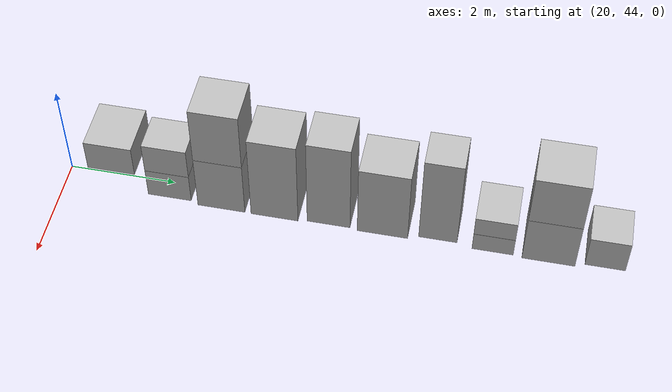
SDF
<sdf version="1.5">
 <world name="default">
  <model name="ground_plane">
   <static>true</static>
   <link name="link">
    <collision name="collision">
     <geometry><plane><normal>0 0 1</normal><size>250 250</size></plane></geometry>
     <surface><friction><ode><mu>1</mu><mu2>1</mu2></ode></friction></surface>
    </collision>
    <visual name="grass">
     <cast_shadows>false</cast_shadows>
     <geometry><mesh><uri>file://grass_plane/meshes/grass_plane.dae</uri></mesh></geometry>
    </visual>
   </link>
  </model>
  <model name="Cardboard_box_top_595">
   <link name="link_0">
    <pose>20 45 0.676208638989 0 0 0</pose>
    <inertial>
     <mass>1</mass>
     <inertia>
      <ixx>0.166667</ixx>
      <ixy>0</ixy>
      <ixz>0</ixz>
      <iyy>0.166667</iyy>
      <iyz>0</iyz>
      <izz>0.166667</izz>
     </inertia>
    </inertial>
    <collision name="collision">
     <geometry>
      <mesh>
       <uri>model://Cardboard_box/meshes/cardboard_box.dae</uri>
       <scale>2.4670551635 2.21532120458 1.69052159747</scale>
      </mesh>
     </geometry>
    </collision>
    <visual name="visual">
     <geometry>
      <mesh>
       <uri>model://Cardboard_box/meshes/cardboard_box.dae</uri>
       <scale>2.4670551635 2.21532120458 1.69052159747</scale>
      </mesh>
     </geometry>
    </visual>
   </link>
   <static>1</static>
  </model>
  <model name="Cardboard_box_596">
   <link name="link_0">
    <pose>20 46 0 0 0 0</pose>
    <inertial>
     <mass>1</mass>
     <inertia>
      <ixx>0.166667</ixx>
      <ixy>0</ixy>
      <ixz>0</ixz>
      <iyy>0.166667</iyy>
      <iyz>0</iyz>
      <izz>0.166667</izz>
     </inertia>
    </inertial>
    <collision name="collision">
     <geometry>
      <mesh>
       <uri>model://Cardboard_box/meshes/cardboard_box.dae</uri>
       <scale>1.80768820556 2.0607236674 1.68844038289</scale>
      </mesh>
     </geometry>
    </collision>
    <visual name="visual">
     <geometry>
      <mesh>
       <uri>model://Cardboard_box/meshes/cardboard_box.dae</uri>
       <scale>1.80768820556 2.0607236674 1.68844038289</scale>
      </mesh>
     </geometry>
    </visual>
   </link>
   <static>1</static>
  </model>
  <model name="Cardboard_box_top_596">
   <link name="link_0">
    <pose>20 46 0.675376153158 0 0 0</pose>
    <inertial>
     <mass>1</mass>
     <inertia>
      <ixx>0.166667</ixx>
      <ixy>0</ixy>
      <ixz>0</ixz>
      <iyy>0.166667</iyy>
      <iyz>0</iyz>
      <izz>0.166667</izz>
     </inertia>
    </inertial>
    <collision name="collision">
     <geometry>
      <mesh>
       <uri>model://Cardboard_box/meshes/cardboard_box.dae</uri>
       <scale>1.80768820556 2.0607236674 1.68844038289</scale>
      </mesh>
     </geometry>
    </collision>
    <visual name="visual">
     <geometry>
      <mesh>
       <uri>model://Cardboard_box/meshes/cardboard_box.dae</uri>
       <scale>1.80768820556 2.0607236674 1.68844038289</scale>
      </mesh>
     </geometry>
    </visual>
   </link>
   <static>1</static>
  </model>
  <model name="Cardboard_box_597">
   <link name="link_0">
    <pose>20 47 0 0 0 0</pose>
    <inertial>
     <mass>1</mass>
     <inertia>
      <ixx>0.166667</ixx>
      <ixy>0</ixy>
      <ixz>0</ixz>
      <iyy>0.166667</iyy>
      <iyz>0</iyz>
      <izz>0.166667</izz>
     </inertia>
    </inertial>
    <collision name="collision">
     <geometry>
      <mesh>
       <uri>model://Cardboard_box/meshes/cardboard_box.dae</uri>
       <scale>2.15739503607 2.23241561671 3.17244859033</scale>
      </mesh>
     </geometry>
    </collision>
    <visual name="visual">
     <geometry>
      <mesh>
       <uri>model://Cardboard_box/meshes/cardboard_box.dae</uri>
       <scale>2.15739503607 2.23241561671 3.17244859033</scale>
      </mesh>
     </geometry>
    </visual>
   </link>
   <static>1</static>
  </model>
  <model name="Cardboard_box_top_597">
   <link name="link_0">
    <pose>20 47 1.26897943613 0 0 0</pose>
    <inertial>
     <mass>1</mass>
     <inertia>
      <ixx>0.166667</ixx>
      <ixy>0</ixy>
      <ixz>0</ixz>
      <iyy>0.166667</iyy>
      <iyz>0</iyz>
      <izz>0.166667</izz>
     </inertia>
    </inertial>
    <collision name="collision">
     <geometry>
      <mesh>
       <uri>model://Cardboard_box/meshes/cardboard_box.dae</uri>
       <scale>2.15739503607 2.23241561671 3.17244859033</scale>
      </mesh>
     </geometry>
    </collision>
    <visual name="visual">
     <geometry>
      <mesh>
       <uri>model://Cardboard_box/meshes/cardboard_box.dae</uri>
       <scale>2.15739503607 2.23241561671 3.17244859033</scale>
      </mesh>
     </geometry>
    </visual>
   </link>
   <static>1</static>
  </model>
  <model name="Cardboard_box_598">
   <link name="link_0">
    <pose>20 48 0 0 0 0</pose>
    <inertial>
     <mass>1</mass>
     <inertia>
      <ixx>0.166667</ixx>
      <ixy>0</ixy>
      <ixz>0</ixz>
      <iyy>0.166667</iyy>
      <iyz>0</iyz>
      <izz>0.166667</izz>
     </inertia>
    </inertial>
    <collision name="collision">
     <geometry>
      <mesh>
       <uri>model://Cardboard_box/meshes/cardboard_box.dae</uri>
       <scale>2.19533464071 2.21089277619 5.01752913524</scale>
      </mesh>
     </geometry>
    </collision>
    <visual name="visual">
     <geometry>
      <mesh>
       <uri>model://Cardboard_box/meshes/cardboard_box.dae</uri>
       <scale>2.19533464071 2.21089277619 5.01752913524</scale>
      </mesh>
     </geometry>
    </visual>
   </link>
   <static>1</static>
  </model>
  <model name="Cardboard_box_599">
   <link name="link_0">
    <pose>20 49 0 0 0 0</pose>
    <inertial>
     <mass>1</mass>
     <inertia>
      <ixx>0.166667</ixx>
      <ixy>0</ixy>
      <ixz>0</ixz>
      <iyy>0.166667</iyy>
      <iyz>0</iyz>
      <izz>0.166667</izz>
     </inertia>
    </inertial>
    <collision name="collision">
     <geometry>
      <mesh>
       <uri>model://Cardboard_box/meshes/cardboard_box.dae</uri>
       <scale>2.02229234032 1.99942398174 5.27674817004</scale>
      </mesh>
     </geometry>
    </collision>
    <visual name="visual">
     <geometry>
      <mesh>
       <uri>model://Cardboard_box/meshes/cardboard_box.dae</uri>
       <scale>2.02229234032 1.99942398174 5.27674817004</scale>
      </mesh>
     </geometry>
    </visual>
   </link>
   <static>1</static>
  </model>
  <model name="Cardboard_box_600">
   <link name="link_0">
    <pose>20 50 0 0 0 0</pose>
    <inertial>
     <mass>1</mass>
     <inertia>
      <ixx>0.166667</ixx>
      <ixy>0</ixy>
      <ixz>0</ixz>
      <iyy>0.166667</iyy>
      <iyz>0</iyz>
      <izz>0.166667</izz>
     </inertia>
    </inertial>
    <collision name="collision">
     <geometry>
      <mesh>
       <uri>model://Cardboard_box/meshes/cardboard_box.dae</uri>
       <scale>2.20999575253 2.33088444261 4.20336515238</scale>
      </mesh>
     </geometry>
    </collision>
    <visual name="visual">
     <geometry>
      <mesh>
       <uri>model://Cardboard_box/meshes/cardboard_box.dae</uri>
       <scale>2.20999575253 2.33088444261 4.20336515238</scale>
      </mesh>
     </geometry>
    </visual>
   </link>
   <static>1</static>
  </model>
  <model name="Cardboard_box_601">
   <link name="link_0">
    <pose>20 51 0 0 0 0</pose>
    <inertial>
     <mass>1</mass>
     <inertia>
      <ixx>0.166667</ixx>
      <ixy>0</ixy>
      <ixz>0</ixz>
      <iyy>0.166667</iyy>
      <iyz>0</iyz>
      <izz>0.166667</izz>
     </inertia>
    </inertial>
    <collision name="collision">
     <geometry>
      <mesh>
       <uri>model://Cardboard_box/meshes/cardboard_box.dae</uri>
       <scale>1.80166388588 1.75874802731 5.18500473068</scale>
      </mesh>
     </geometry>
    </collision>
    <visual name="visual">
     <geometry>
      <mesh>
       <uri>model://Cardboard_box/meshes/cardboard_box.dae</uri>
       <scale>1.80166388588 1.75874802731 5.18500473068</scale>
      </mesh>
     </geometry>
    </visual>
   </link>
   <static>1</static>
  </model>
  <model name="Cardboard_box_602">
   <link name="link_0">
    <pose>20 52 0 0 0 0</pose>
    <inertial>
     <mass>1</mass>
     <inertia>
      <ixx>0.166667</ixx>
      <ixy>0</ixy>
      <ixz>0</ixz>
      <iyy>0.166667</iyy>
      <iyz>0</iyz>
      <izz>0.166667</izz>
     </inertia>
    </inertial>
    <collision name="collision">
     <geometry>
      <mesh>
       <uri>model://Cardboard_box/meshes/cardboard_box.dae</uri>
       <scale>2.19040603786 1.8685629023 1.08108384229</scale>
      </mesh>
     </geometry>
    </collision>
    <visual name="visual">
     <geometry>
      <mesh>
       <uri>model://Cardboard_box/meshes/cardboard_box.dae</uri>
       <scale>2.19040603786 1.8685629023 1.08108384229</scale>
      </mesh>
     </geometry>
    </visual>
   </link>
   <static>1</static>
  </model>
  <model name="Cardboard_box_top_602">
   <link name="link_0">
    <pose>20 52 0.432433536916 0 0 0</pose>
    <inertial>
     <mass>1</mass>
     <inertia>
      <ixx>0.166667</ixx>
      <ixy>0</ixy>
      <ixz>0</ixz>
      <iyy>0.166667</iyy>
      <iyz>0</iyz>
      <izz>0.166667</izz>
     </inertia>
    </inertial>
    <collision name="collision">
     <geometry>
      <mesh>
       <uri>model://Cardboard_box/meshes/cardboard_box.dae</uri>
       <scale>2.19040603786 1.8685629023 1.08108384229</scale>
      </mesh>
     </geometry>
    </collision>
    <visual name="visual">
     <geometry>
      <mesh>
       <uri>model://Cardboard_box/meshes/cardboard_box.dae</uri>
       <scale>2.19040603786 1.8685629023 1.08108384229</scale>
      </mesh>
     </geometry>
    </visual>
   </link>
   <static>1</static>
  </model>
  <model name="Cardboard_box_603">
   <link name="link_0">
    <pose>20 53 0 0 0 0</pose>
    <inertial>
     <mass>1</mass>
     <inertia>
      <ixx>0.166667</ixx>
      <ixy>0</ixy>
      <ixz>0</ixz>
      <iyy>0.166667</iyy>
      <iyz>0</iyz>
      <izz>0.166667</izz>
     </inertia>
    </inertial>
    <collision name="collision">
     <geometry>
      <mesh>
       <uri>model://Cardboard_box/meshes/cardboard_box.dae</uri>
       <scale>2.3522912547 2.38019440943 2.72197416276</scale>
      </mesh>
     </geometry>
    </collision>
    <visual name="visual">
     <geometry>
      <mesh>
       <uri>model://Cardboard_box/meshes/cardboard_box.dae</uri>
       <scale>2.3522912547 2.38019440943 2.72197416276</scale>
      </mesh>
     </geometry>
    </visual>
   </link>
   <static>1</static>
  </model>
  <model name="Cardboard_box_top_603">
   <link name="link_0">
    <pose>20 53 1.08878966511 0 0 0</pose>
    <inertial>
     <mass>1</mass>
     <inertia>
      <ixx>0.166667</ixx>
      <ixy>0</ixy>
      <ixz>0</ixz>
      <iyy>0.166667</iyy>
      <iyz>0</iyz>
      <izz>0.166667</izz>
     </inertia>
    </inertial>
    <collision name="collision">
     <geometry>
      <mesh>
       <uri>model://Cardboard_box/meshes/cardboard_box.dae</uri>
       <scale>2.3522912547 2.38019440943 2.72197416276</scale>
      </mesh>
     </geometry>
    </collision>
    <visual name="visual">
     <geometry>
      <mesh>
       <uri>model://Cardboard_box/meshes/cardboard_box.dae</uri>
       <scale>2.3522912547 2.38019440943 2.72197416276</scale>
      </mesh>
     </geometry>
    </visual>
   </link>
   <static>1</static>
  </model>
  <model name="Cardboard_box_604">
   <link name="link_0">
    <pose>20 54 0 0 0 0</pose>
    <inertial>
     <mass>1</mass>
     <inertia>
      <ixx>0.166667</ixx>
      <ixy>0</ixy>
      <ixz>0</ixz>
      <iyy>0.166667</iyy>
      <iyz>0</iyz>
      <izz>0.166667</izz>
     </inertia>
    </inertial>
    <collision name="collision">
     <geometry>
      <mesh>
       <uri>model://Cardboard_box/meshes/cardboard_box.dae</uri>
       <scale>1.96607956529 1.80147927238 1.84238744274</scale>
      </mesh>
     </geometry>
    </collision>
    <visual name="visual">
     <geometry>
      <mesh>
       <uri>model://Cardboard_box/meshes/cardboard_box.dae</uri>
       <scale>1.96607956529 1.80147927238 1.84238744274</scale>
      </mesh>
     </geometry>
    </visual>
   </link>
   <static>1</static>
  </model>
 </world>
</sdf>
